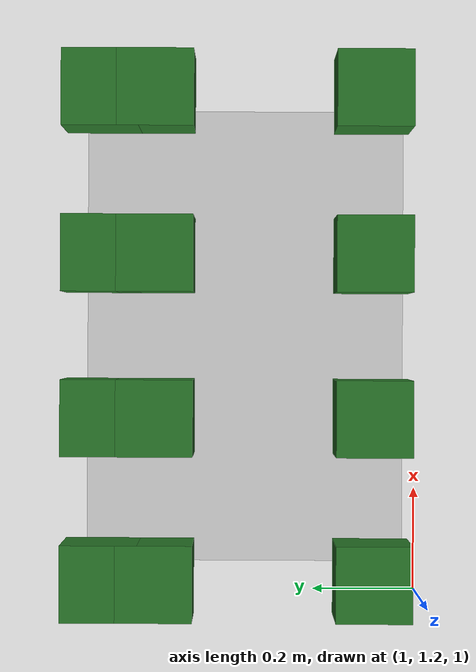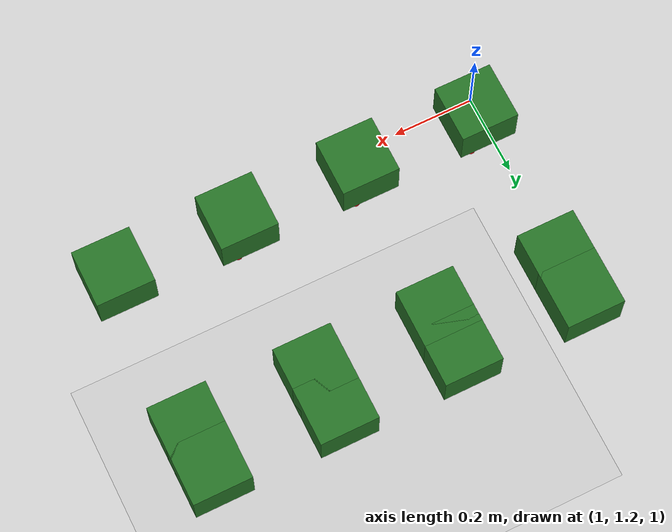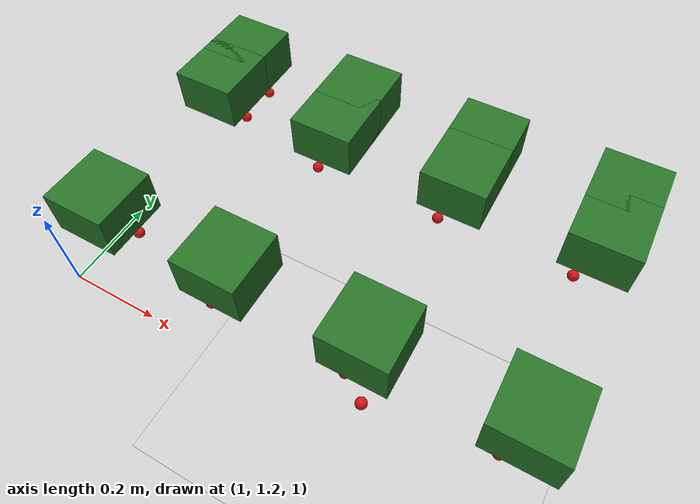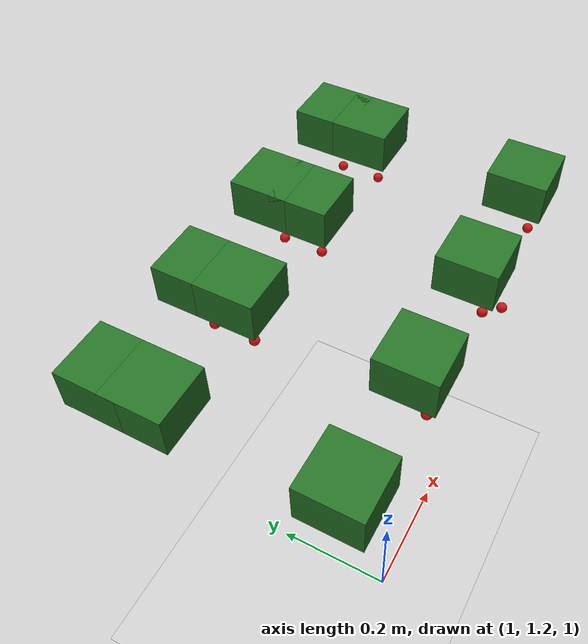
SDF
<sdf version="1.7">
 <world name="irish_polytunnel">
  <include><uri>model://sun</uri></include>
  <include><uri>model://ground_plane</uri></include>
  <model name="row2_L_plant5_berry_1">
   <static>true</static>
   <pose>1.670 1.230 1.050 0 0 0</pose>
   <link name="link">
    <visual name="visual">
     <geometry><sphere><radius>0.012</radius></sphere></geometry>
     <material><ambient>0.75 0.05 0.05 1</ambient><diffuse>0.85 0.08 0.08 1</diffuse></material>
    </visual>
   </link>
  </model>
  <model name="row3_L_plant3_foliage">
   <static>true</static>
   <pose>1.050 1.700 1.180 0 0 0</pose>
   <link name="link">
    <visual name="visual">
     <geometry><box><size>0.14 0.14 0.10</size></box></geometry>
     <material><ambient>0.10 0.35 0.10 1</ambient><diffuse>0.15 0.45 0.15 1</diffuse></material>
    </visual>
   </link>
  </model>
  <model name="row3_L_plant3_berry_1">
   <static>true</static>
   <pose>1.070 1.730 1.050 0 0 0</pose>
   <link name="link">
    <visual name="visual">
     <geometry><sphere><radius>0.012</radius></sphere></geometry>
     <material><ambient>0.75 0.05 0.05 1</ambient><diffuse>0.85 0.08 0.08 1</diffuse></material>
    </visual>
   </link>
  </model>
  <model name="row3_L_plant4_foliage">
   <static>true</static>
   <pose>1.350 1.700 1.180 0 0 0</pose>
   <link name="link">
    <visual name="visual">
     <geometry><box><size>0.14 0.14 0.10</size></box></geometry>
     <material><ambient>0.10 0.35 0.10 1</ambient><diffuse>0.15 0.45 0.15 1</diffuse></material>
    </visual>
   </link>
  </model>
  <model name="row3_L_plant4_berry_0">
   <static>true</static>
   <pose>1.320 1.660 1.070 0 0 0</pose>
   <link name="link">
    <visual name="visual">
     <geometry><sphere><radius>0.012</radius></sphere></geometry>
     <material><ambient>0.75 0.05 0.05 1</ambient><diffuse>0.85 0.08 0.08 1</diffuse></material>
    </visual>
   </link>
  </model>
  <model name="row3_L_plant4_berry_1">
   <static>true</static>
   <pose>1.370 1.730 1.050 0 0 0</pose>
   <link name="link">
    <visual name="visual">
     <geometry><sphere><radius>0.012</radius></sphere></geometry>
     <material><ambient>0.75 0.05 0.05 1</ambient><diffuse>0.85 0.08 0.08 1</diffuse></material>
    </visual>
   </link>
  </model>
  <model name="row3_L_plant5_foliage">
   <static>true</static>
   <pose>1.650 1.700 1.180 0 0 0</pose>
   <link name="link">
    <visual name="visual">
     <geometry><box><size>0.14 0.14 0.10</size></box></geometry>
     <material><ambient>0.10 0.35 0.10 1</ambient><diffuse>0.15 0.45 0.15 1</diffuse></material>
    </visual>
   </link>
  </model>
  <model name="row3_L_plant5_berry_0">
   <static>true</static>
   <pose>1.620 1.660 1.070 0 0 0</pose>
   <link name="link">
    <visual name="visual">
     <geometry><sphere><radius>0.012</radius></sphere></geometry>
     <material><ambient>0.75 0.05 0.05 1</ambient><diffuse>0.85 0.08 0.08 1</diffuse></material>
    </visual>
   </link>
  </model>
  <model name="row3_L_plant5_berry_1">
   <static>true</static>
   <pose>1.670 1.730 1.050 0 0 0</pose>
   <link name="link">
    <visual name="visual">
     <geometry><sphere><radius>0.012</radius></sphere></geometry>
     <material><ambient>0.75 0.05 0.05 1</ambient><diffuse>0.85 0.08 0.08 1</diffuse></material>
    </visual>
   </link>
  </model>
  <model name="row3_L_plant6_foliage">
   <static>true</static>
   <pose>1.950 1.700 1.180 0 0 0</pose>
   <link name="link">
    <visual name="visual">
     <geometry><box><size>0.14 0.14 0.10</size></box></geometry>
     <material><ambient>0.10 0.35 0.10 1</ambient><diffuse>0.15 0.45 0.15 1</diffuse></material>
    </visual>
   </link>
  </model>
  <model name="row3_L_plant6_berry_0">
   <static>true</static>
   <pose>1.920 1.660 1.070 0 0 0</pose>
   <link name="link">
    <visual name="visual">
     <geometry><sphere><radius>0.012</radius></sphere></geometry>
     <material><ambient>0.75 0.05 0.05 1</ambient><diffuse>0.85 0.08 0.08 1</diffuse></material>
    </visual>
   </link>
  </model>
  <model name="row3_R_plant3_foliage">
   <static>true</static>
   <pose>1.050 1.300 1.180 0 0 0</pose>
   <link name="link">
    <visual name="visual">
     <geometry><box><size>0.14 0.14 0.10</size></box></geometry>
     <material><ambient>0.10 0.35 0.10 1</ambient><diffuse>0.15 0.45 0.15 1</diffuse></material>
    </visual>
   </link>
  </model>
  <model name="row3_R_plant3_berry_1">
   <static>true</static>
   <pose>1.070 1.330 1.050 0 0 0</pose>
   <link name="link">
    <visual name="visual">
     <geometry><sphere><radius>0.012</radius></sphere></geometry>
     <material><ambient>0.75 0.05 0.05 1</ambient><diffuse>0.85 0.08 0.08 1</diffuse></material>
    </visual>
   </link>
  </model>
  <model name="row3_R_plant4_foliage">
   <static>true</static>
   <pose>1.350 1.300 1.180 0 0 0</pose>
   <link name="link">
    <visual name="visual">
     <geometry><box><size>0.14 0.14 0.10</size></box></geometry>
     <material><ambient>0.10 0.35 0.10 1</ambient><diffuse>0.15 0.45 0.15 1</diffuse></material>
    </visual>
   </link>
  </model>
  <model name="row3_R_plant4_berry_0">
   <static>true</static>
   <pose>1.320 1.260 1.070 0 0 0</pose>
   <link name="link">
    <visual name="visual">
     <geometry><sphere><radius>0.012</radius></sphere></geometry>
     <material><ambient>0.75 0.05 0.05 1</ambient><diffuse>0.85 0.08 0.08 1</diffuse></material>
    </visual>
   </link>
  </model>
  <model name="row3_R_plant4_berry_1">
   <static>true</static>
   <pose>1.370 1.330 1.050 0 0 0</pose>
   <link name="link">
    <visual name="visual">
     <geometry><sphere><radius>0.012</radius></sphere></geometry>
     <material><ambient>0.75 0.05 0.05 1</ambient><diffuse>0.85 0.08 0.08 1</diffuse></material>
    </visual>
   </link>
  </model>
  <model name="row3_R_plant5_foliage">
   <static>true</static>
   <pose>1.650 1.300 1.180 0 0 0</pose>
   <link name="link">
    <visual name="visual">
     <geometry><box><size>0.14 0.14 0.10</size></box></geometry>
     <material><ambient>0.10 0.35 0.10 1</ambient><diffuse>0.15 0.45 0.15 1</diffuse></material>
    </visual>
   </link>
  </model>
  <model name="row3_R_plant5_berry_0">
   <static>true</static>
   <pose>1.620 1.260 1.070 0 0 0</pose>
   <link name="link">
    <visual name="visual">
     <geometry><sphere><radius>0.012</radius></sphere></geometry>
     <material><ambient>0.75 0.05 0.05 1</ambient><diffuse>0.85 0.08 0.08 1</diffuse></material>
    </visual>
   </link>
  </model>
  <model name="row3_R_plant5_berry_1">
   <static>true</static>
   <pose>1.670 1.330 1.050 0 0 0</pose>
   <link name="link">
    <visual name="visual">
     <geometry><sphere><radius>0.012</radius></sphere></geometry>
     <material><ambient>0.75 0.05 0.05 1</ambient><diffuse>0.85 0.08 0.08 1</diffuse></material>
    </visual>
   </link>
  </model>
  <model name="row3_R_plant6_foliage">
   <static>true</static>
   <pose>1.950 1.300 1.180 0 0 0</pose>
   <link name="link">
    <visual name="visual">
     <geometry><box><size>0.14 0.14 0.10</size></box></geometry>
     <material><ambient>0.10 0.35 0.10 1</ambient><diffuse>0.15 0.45 0.15 1</diffuse></material>
    </visual>
   </link>
  </model>
  <model name="row3_R_plant6_berry_0">
   <static>true</static>
   <pose>1.920 1.260 1.070 0 0 0</pose>
   <link name="link">
    <visual name="visual">
     <geometry><sphere><radius>0.012</radius></sphere></geometry>
     <material><ambient>0.75 0.05 0.05 1</ambient><diffuse>0.85 0.08 0.08 1</diffuse></material>
    </visual>
   </link>
  </model>
  <model name="row4_R_plant3_foliage">
   <static>true</static>
   <pose>1.050 1.800 1.180 0 0 0</pose>
   <link name="link">
    <visual name="visual">
     <geometry><box><size>0.14 0.14 0.10</size></box></geometry>
     <material><ambient>0.10 0.35 0.10 1</ambient><diffuse>0.15 0.45 0.15 1</diffuse></material>
    </visual>
   </link>
  </model>
  <model name="row4_R_plant3_berry_0">
   <static>true</static>
   <pose>1.020 1.760 1.070 0 0 0</pose>
   <link name="link">
    <visual name="visual">
     <geometry><sphere><radius>0.012</radius></sphere></geometry>
     <material><ambient>0.75 0.05 0.05 1</ambient><diffuse>0.85 0.08 0.08 1</diffuse></material>
    </visual>
   </link>
  </model>
  <model name="row4_R_plant3_berry_1">
   <static>true</static>
   <pose>1.070 1.830 1.050 0 0 0</pose>
   <link name="link">
    <visual name="visual">
     <geometry><sphere><radius>0.012</radius></sphere></geometry>
     <material><ambient>0.75 0.05 0.05 1</ambient><diffuse>0.85 0.08 0.08 1</diffuse></material>
    </visual>
   </link>
  </model>
  <model name="row4_R_plant4_foliage">
   <static>true</static>
   <pose>1.350 1.800 1.180 0 0 0</pose>
   <link name="link">
    <visual name="visual">
     <geometry><box><size>0.14 0.14 0.10</size></box></geometry>
     <material><ambient>0.10 0.35 0.10 1</ambient><diffuse>0.15 0.45 0.15 1</diffuse></material>
    </visual>
   </link>
  </model>
  <model name="row4_R_plant4_berry_0">
   <static>true</static>
   <pose>1.320 1.760 1.070 0 0 0</pose>
   <link name="link">
    <visual name="visual">
     <geometry><sphere><radius>0.012</radius></sphere></geometry>
     <material><ambient>0.75 0.05 0.05 1</ambient><diffuse>0.85 0.08 0.08 1</diffuse></material>
    </visual>
   </link>
  </model>
  <model name="row4_R_plant4_berry_1">
   <static>true</static>
   <pose>1.370 1.830 1.050 0 0 0</pose>
   <link name="link">
    <visual name="visual">
     <geometry><sphere><radius>0.012</radius></sphere></geometry>
     <material><ambient>0.75 0.05 0.05 1</ambient><diffuse>0.85 0.08 0.08 1</diffuse></material>
    </visual>
   </link>
  </model>
  <model name="row4_R_plant5_foliage">
   <static>true</static>
   <pose>1.650 1.800 1.180 0 0 0</pose>
   <link name="link">
    <visual name="visual">
     <geometry><box><size>0.14 0.14 0.10</size></box></geometry>
     <material><ambient>0.10 0.35 0.10 1</ambient><diffuse>0.15 0.45 0.15 1</diffuse></material>
    </visual>
   </link>
  </model>
  <model name="row4_R_plant5_berry_0">
   <static>true</static>
   <pose>1.620 1.760 1.070 0 0 0</pose>
   <link name="link">
    <visual name="visual">
     <geometry><sphere><radius>0.012</radius></sphere></geometry>
     <material><ambient>0.75 0.05 0.05 1</ambient><diffuse>0.85 0.08 0.08 1</diffuse></material>
    </visual>
   </link>
  </model>
  <model name="row4_R_plant5_berry_1">
   <static>true</static>
   <pose>1.670 1.830 1.050 0 0 0</pose>
   <link name="link">
    <visual name="visual">
     <geometry><sphere><radius>0.012</radius></sphere></geometry>
     <material><ambient>0.75 0.05 0.05 1</ambient><diffuse>0.85 0.08 0.08 1</diffuse></material>
    </visual>
   </link>
  </model>
  <model name="row4_R_plant6_foliage">
   <static>true</static>
   <pose>1.950 1.800 1.180 0 0 0</pose>
   <link name="link">
    <visual name="visual">
     <geometry><box><size>0.14 0.14 0.10</size></box></geometry>
     <material><ambient>0.10 0.35 0.10 1</ambient><diffuse>0.15 0.45 0.15 1</diffuse></material>
    </visual>
   </link>
  </model>
  <model name="row4_R_plant6_berry_0">
   <static>true</static>
   <pose>1.920 1.760 1.070 0 0 0</pose>
   <link name="link">
    <visual name="visual">
     <geometry><sphere><radius>0.012</radius></sphere></geometry>
     <material><ambient>0.75 0.05 0.05 1</ambient><diffuse>0.85 0.08 0.08 1</diffuse></material>
    </visual>
   </link>
  </model>
 </world>
</sdf>
